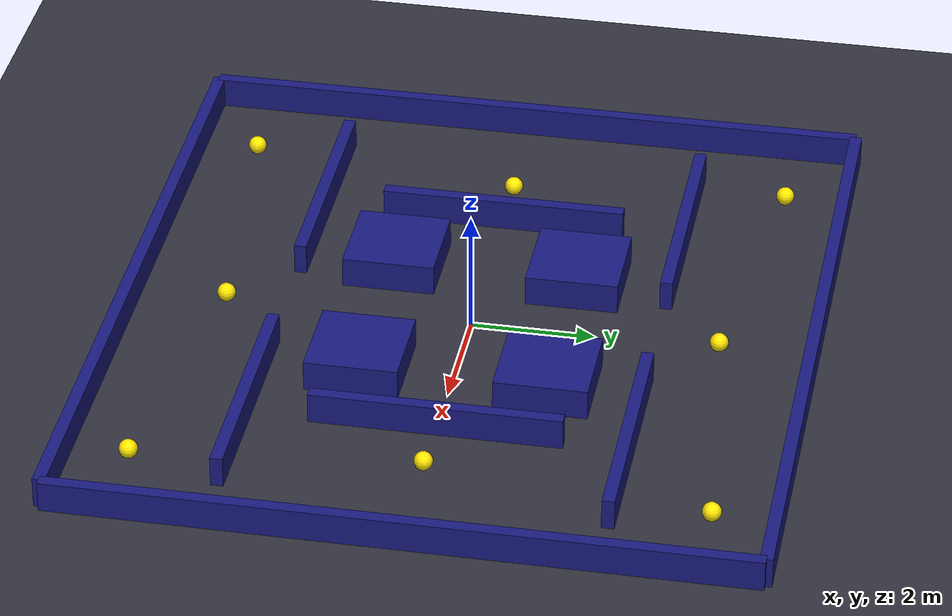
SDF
<?xml version="1.0" ?>
<sdf version="1.8">
  <world name="pac_mouse_maze">

    <!-- Physics -->
    <physics name="1ms" type="ode">
      <max_step_size>0.001</max_step_size>
      <real_time_factor>1.0</real_time_factor>
    </physics>

    <!-- Lighting -->
    <light type="directional" name="sun">
      <cast_shadows>true</cast_shadows>
      <pose>0 0 10 0 0 0</pose>
      <diffuse>0.8 0.8 0.8 1</diffuse>
      <specular>0.2 0.2 0.2 1</specular>
      <attenuation>
        <range>1000</range>
        <constant>0.9</constant>
        <linear>0.01</linear>
        <quadratic>0.001</quadratic>
      </attenuation>
      <direction>-0.5 0.1 -0.9</direction>
    </light>

    <!-- Ground Plane -->
    <model name="ground_plane">
      <static>true</static>
      <link name="link">
        <collision name="collision">
          <geometry>
            <plane>
              <normal>0 0 1</normal>
              <size>100 100</size>
            </plane>
          </geometry>
        </collision>
        <visual name="visual">
          <geometry>
            <plane>
              <normal>0 0 1</normal>
              <size>100 100</size>
            </plane>
          </geometry>
          <material>
            <ambient>0.2 0.2 0.25 1</ambient>
            <diffuse>0.2 0.2 0.25 1</diffuse>
          </material>
        </visual>
      </link>
    </model>

    <!-- MAZE WALLS (Pac-Man Style Layout) -->

    <!-- Outer boundary walls -->
    <!-- North wall -->
    <model name="wall_north">
      <static>true</static>
      <pose>0 5.5 0.25 0 0 0</pose>
      <link name="link">
        <collision name="collision">
          <geometry>
            <box><size>12 0.2 0.5</size></box>
          </geometry>
        </collision>
        <visual name="visual">
          <geometry>
            <box><size>12 0.2 0.5</size></box>
          </geometry>
          <material>
            <ambient>0.1 0.1 0.3 1</ambient>
            <diffuse>0.1 0.1 0.5 1</diffuse>
          </material>
        </visual>
      </link>
    </model>

    <!-- South wall -->
    <model name="wall_south">
      <static>true</static>
      <pose>0 -5.5 0.25 0 0 0</pose>
      <link name="link">
        <collision name="collision">
          <geometry>
            <box><size>12 0.2 0.5</size></box>
          </geometry>
        </collision>
        <visual name="visual">
          <geometry>
            <box><size>12 0.2 0.5</size></box>
          </geometry>
          <material>
            <ambient>0.1 0.1 0.3 1</ambient>
            <diffuse>0.1 0.1 0.5 1</diffuse>
          </material>
        </visual>
      </link>
    </model>

    <!-- East wall -->
    <model name="wall_east">
      <static>true</static>
      <pose>6 0 0.25 0 0 0</pose>
      <link name="link">
        <collision name="collision">
          <geometry>
            <box><size>0.2 11 0.5</size></box>
          </geometry>
        </collision>
        <visual name="visual">
          <geometry>
            <box><size>0.2 11 0.5</size></box>
          </geometry>
          <material>
            <ambient>0.1 0.1 0.3 1</ambient>
            <diffuse>0.1 0.1 0.5 1</diffuse>
          </material>
        </visual>
      </link>
    </model>

    <!-- West wall -->
    <model name="wall_west">
      <static>true</static>
      <pose>-6 0 0.25 0 0 0</pose>
      <link name="link">
        <collision name="collision">
          <geometry>
            <box><size>0.2 11 0.5</size></box>
          </geometry>
        </collision>
        <visual name="visual">
          <geometry>
            <box><size>0.2 11 0.5</size></box>
          </geometry>
          <material>
            <ambient>0.1 0.1 0.3 1</ambient>
            <diffuse>0.1 0.1 0.5 1</diffuse>
          </material>
        </visual>
      </link>
    </model>

    <!-- Internal walls - Creating corridors and rooms -->

    <!-- Horizontal corridor dividers -->
    <model name="wall_h1">
      <static>true</static>
      <pose>-3 3 0.25 0 0 0</pose>
      <link name="link">
        <collision name="collision">
          <geometry>
            <box><size>4 0.2 0.5</size></box>
          </geometry>
        </collision>
        <visual name="visual">
          <geometry>
            <box><size>4 0.2 0.5</size></box>
          </geometry>
          <material>
            <ambient>0.1 0.1 0.3 1</ambient>
            <diffuse>0.1 0.1 0.5 1</diffuse>
          </material>
        </visual>
      </link>
    </model>

    <model name="wall_h2">
      <static>true</static>
      <pose>3 3 0.25 0 0 0</pose>
      <link name="link">
        <collision name="collision">
          <geometry>
            <box><size>4 0.2 0.5</size></box>
          </geometry>
        </collision>
        <visual name="visual">
          <geometry>
            <box><size>4 0.2 0.5</size></box>
          </geometry>
          <material>
            <ambient>0.1 0.1 0.3 1</ambient>
            <diffuse>0.1 0.1 0.5 1</diffuse>
          </material>
        </visual>
      </link>
    </model>

    <model name="wall_h3">
      <static>true</static>
      <pose>-3 -3 0.25 0 0 0</pose>
      <link name="link">
        <collision name="collision">
          <geometry>
            <box><size>4 0.2 0.5</size></box>
          </geometry>
        </collision>
        <visual name="visual">
          <geometry>
            <box><size>4 0.2 0.5</size></box>
          </geometry>
          <material>
            <ambient>0.1 0.1 0.3 1</ambient>
            <diffuse>0.1 0.1 0.5 1</diffuse>
          </material>
        </visual>
      </link>
    </model>

    <model name="wall_h4">
      <static>true</static>
      <pose>3 -3 0.25 0 0 0</pose>
      <link name="link">
        <collision name="collision">
          <geometry>
            <box><size>4 0.2 0.5</size></box>
          </geometry>
        </collision>
        <visual name="visual">
          <geometry>
            <box><size>4 0.2 0.5</size></box>
          </geometry>
          <material>
            <ambient>0.1 0.1 0.3 1</ambient>
            <diffuse>0.1 0.1 0.5 1</diffuse>
          </material>
        </visual>
      </link>
    </model>

    <!-- Vertical corridor dividers -->
    <model name="wall_v1">
      <static>true</static>
      <pose>-3 0 0.25 0 0 0</pose>
      <link name="link">
        <collision name="collision">
          <geometry>
            <box><size>0.2 4 0.5</size></box>
          </geometry>
        </collision>
        <visual name="visual">
          <geometry>
            <box><size>0.2 4 0.5</size></box>
          </geometry>
          <material>
            <ambient>0.1 0.1 0.3 1</ambient>
            <diffuse>0.1 0.1 0.5 1</diffuse>
          </material>
        </visual>
      </link>
    </model>

    <model name="wall_v2">
      <static>true</static>
      <pose>3 0 0.25 0 0 0</pose>
      <link name="link">
        <collision name="collision">
          <geometry>
            <box><size>0.2 4 0.5</size></box>
          </geometry>
        </collision>
        <visual name="visual">
          <geometry>
            <box><size>0.2 4 0.5</size></box>
          </geometry>
          <material>
            <ambient>0.1 0.1 0.3 1</ambient>
            <diffuse>0.1 0.1 0.5 1</diffuse>
          </material>
        </visual>
      </link>
    </model>

    <!-- Center obstacle blocks -->
    <model name="center_block_1">
      <static>true</static>
      <pose>-1.5 1.5 0.25 0 0 0</pose>
      <link name="link">
        <collision name="collision">
          <geometry>
            <box><size>1.5 1.5 0.5</size></box>
          </geometry>
        </collision>
        <visual name="visual">
          <geometry>
            <box><size>1.5 1.5 0.5</size></box>
          </geometry>
          <material>
            <ambient>0.1 0.1 0.3 1</ambient>
            <diffuse>0.1 0.1 0.5 1</diffuse>
          </material>
        </visual>
      </link>
    </model>

    <model name="center_block_2">
      <static>true</static>
      <pose>1.5 1.5 0.25 0 0 0</pose>
      <link name="link">
        <collision name="collision">
          <geometry>
            <box><size>1.5 1.5 0.5</size></box>
          </geometry>
        </collision>
        <visual name="visual">
          <geometry>
            <box><size>1.5 1.5 0.5</size></box>
          </geometry>
          <material>
            <ambient>0.1 0.1 0.3 1</ambient>
            <diffuse>0.1 0.1 0.5 1</diffuse>
          </material>
        </visual>
      </link>
    </model>

    <model name="center_block_3">
      <static>true</static>
      <pose>-1.5 -1.5 0.25 0 0 0</pose>
      <link name="link">
        <collision name="collision">
          <geometry>
            <box><size>1.5 1.5 0.5</size></box>
          </geometry>
        </collision>
        <visual name="visual">
          <geometry>
            <box><size>1.5 1.5 0.5</size></box>
          </geometry>
          <material>
            <ambient>0.1 0.1 0.3 1</ambient>
            <diffuse>0.1 0.1 0.5 1</diffuse>
          </material>
        </visual>
      </link>
    </model>

    <model name="center_block_4">
      <static>true</static>
      <pose>1.5 -1.5 0.25 0 0 0</pose>
      <link name="link">
        <collision name="collision">
          <geometry>
            <box><size>1.5 1.5 0.5</size></box>
          </geometry>
        </collision>
        <visual name="visual">
          <geometry>
            <box><size>1.5 1.5 0.5</size></box>
          </geometry>
          <material>
            <ambient>0.1 0.1 0.3 1</ambient>
            <diffuse>0.1 0.1 0.5 1</diffuse>
          </material>
        </visual>
      </link>
    </model>

    <!-- CHEESE OBJECTS (8 pieces) -->

    <model name="cheese_1">
      <pose>-4.5 4.5 0.15 0 0 0</pose>
      <static>false</static>
      <link name="link">
        <collision name="collision">
          <geometry>
            <sphere><radius>0.15</radius></sphere>
          </geometry>
          <surface>
            <contact>
              <collide_without_contact>true</collide_without_contact>
            </contact>
          </surface>
        </collision>
        <visual name="visual">
          <geometry>
            <sphere><radius>0.15</radius></sphere>
          </geometry>
          <material>
            <ambient>1 0.9 0 1</ambient>
            <diffuse>1 0.9 0 1</diffuse>
            <emissive>0.3 0.3 0 1</emissive>
          </material>
        </visual>
        <inertial>
          <mass>0.1</mass>
          <inertia>
            <ixx>0.0001</ixx>
            <iyy>0.0001</iyy>
            <izz>0.0001</izz>
          </inertia>
        </inertial>
      </link>
    </model>

    <model name="cheese_2">
      <pose>4.5 4.5 0.15 0 0 0</pose>
      <static>false</static>
      <link name="link">
        <collision name="collision">
          <geometry>
            <sphere><radius>0.15</radius></sphere>
          </geometry>
          <surface>
            <contact>
              <collide_without_contact>true</collide_without_contact>
            </contact>
          </surface>
        </collision>
        <visual name="visual">
          <geometry>
            <sphere><radius>0.15</radius></sphere>
          </geometry>
          <material>
            <ambient>1 0.9 0 1</ambient>
            <diffuse>1 0.9 0 1</diffuse>
            <emissive>0.3 0.3 0 1</emissive>
          </material>
        </visual>
        <inertial>
          <mass>0.1</mass>
          <inertia>
            <ixx>0.0001</ixx>
            <iyy>0.0001</iyy>
            <izz>0.0001</izz>
          </inertia>
        </inertial>
      </link>
    </model>

    <model name="cheese_3">
      <pose>-4.5 -4.5 0.15 0 0 0</pose>
      <static>false</static>
      <link name="link">
        <collision name="collision">
          <geometry>
            <sphere><radius>0.15</radius></sphere>
          </geometry>
          <surface>
            <contact>
              <collide_without_contact>true</collide_without_contact>
            </contact>
          </surface>
        </collision>
        <visual name="visual">
          <geometry>
            <sphere><radius>0.15</radius></sphere>
          </geometry>
          <material>
            <ambient>1 0.9 0 1</ambient>
            <diffuse>1 0.9 0 1</diffuse>
            <emissive>0.3 0.3 0 1</emissive>
          </material>
        </visual>
        <inertial>
          <mass>0.1</mass>
          <inertia>
            <ixx>0.0001</ixx>
            <iyy>0.0001</iyy>
            <izz>0.0001</izz>
          </inertia>
        </inertial>
      </link>
    </model>

    <model name="cheese_4">
      <pose>4.5 -4.5 0.15 0 0 0</pose>
      <static>false</static>
      <link name="link">
        <collision name="collision">
          <geometry>
            <sphere><radius>0.15</radius></sphere>
          </geometry>
          <surface>
            <contact>
              <collide_without_contact>true</collide_without_contact>
            </contact>
          </surface>
        </collision>
        <visual name="visual">
          <geometry>
            <sphere><radius>0.15</radius></sphere>
          </geometry>
          <material>
            <ambient>1 0.9 0 1</ambient>
            <diffuse>1 0.9 0 1</diffuse>
            <emissive>0.3 0.3 0 1</emissive>
          </material>
        </visual>
        <inertial>
          <mass>0.1</mass>
          <inertia>
            <ixx>0.0001</ixx>
            <iyy>0.0001</iyy>
            <izz>0.0001</izz>
          </inertia>
        </inertial>
      </link>
    </model>

    <model name="cheese_5">
      <pose>0 4.0 0.15 0 0 0</pose>
      <static>false</static>
      <link name="link">
        <collision name="collision">
          <geometry>
            <sphere><radius>0.15</radius></sphere>
          </geometry>
          <surface>
            <contact>
              <collide_without_contact>true</collide_without_contact>
            </contact>
          </surface>
        </collision>
        <visual name="visual">
          <geometry>
            <sphere><radius>0.15</radius></sphere>
          </geometry>
          <material>
            <ambient>1 0.9 0 1</ambient>
            <diffuse>1 0.9 0 1</diffuse>
            <emissive>0.3 0.3 0 1</emissive>
          </material>
        </visual>
        <inertial>
          <mass>0.1</mass>
          <inertia>
            <ixx>0.0001</ixx>
            <iyy>0.0001</iyy>
            <izz>0.0001</izz>
          </inertia>
        </inertial>
      </link>
    </model>

    <model name="cheese_6">
      <pose>0 -4.0 0.15 0 0 0</pose>
      <static>false</static>
      <link name="link">
        <collision name="collision">
          <geometry>
            <sphere><radius>0.15</radius></sphere>
          </geometry>
          <surface>
            <contact>
              <collide_without_contact>true</collide_without_contact>
            </contact>
          </surface>
        </collision>
        <visual name="visual">
          <geometry>
            <sphere><radius>0.15</radius></sphere>
          </geometry>
          <material>
            <ambient>1 0.9 0 1</ambient>
            <diffuse>1 0.9 0 1</diffuse>
            <emissive>0.3 0.3 0 1</emissive>
          </material>
        </visual>
        <inertial>
          <mass>0.1</mass>
          <inertia>
            <ixx>0.0001</ixx>
            <iyy>0.0001</iyy>
            <izz>0.0001</izz>
          </inertia>
        </inertial>
      </link>
    </model>

    <model name="cheese_7">
      <pose>-4.0 0 0.15 0 0 0</pose>
      <static>false</static>
      <link name="link">
        <collision name="collision">
          <geometry>
            <sphere><radius>0.15</radius></sphere>
          </geometry>
          <surface>
            <contact>
              <collide_without_contact>true</collide_without_contact>
            </contact>
          </surface>
        </collision>
        <visual name="visual">
          <geometry>
            <sphere><radius>0.15</radius></sphere>
          </geometry>
          <material>
            <ambient>1 0.9 0 1</ambient>
            <diffuse>1 0.9 0 1</diffuse>
            <emissive>0.3 0.3 0 1</emissive>
          </material>
        </visual>
        <inertial>
          <mass>0.1</mass>
          <inertia>
            <ixx>0.0001</ixx>
            <iyy>0.0001</iyy>
            <izz>0.0001</izz>
          </inertia>
        </inertial>
      </link>
    </model>

    <model name="cheese_8">
      <pose>4.0 0 0.15 0 0 0</pose>
      <static>false</static>
      <link name="link">
        <collision name="collision">
          <geometry>
            <sphere><radius>0.15</radius></sphere>
          </geometry>
          <surface>
            <contact>
              <collide_without_contact>true</collide_without_contact>
            </contact>
          </surface>
        </collision>
        <visual name="visual">
          <geometry>
            <sphere><radius>0.15</radius></sphere>
          </geometry>
          <material>
            <ambient>1 0.9 0 1</ambient>
            <diffuse>1 0.9 0 1</diffuse>
            <emissive>0.3 0.3 0 1</emissive>
          </material>
        </visual>
        <inertial>
          <mass>0.1</mass>
          <inertia>
            <ixx>0.0001</ixx>
            <iyy>0.0001</iyy>
            <izz>0.0001</izz>
          </inertia>
        </inertial>
      </link>
    </model>

  </world>
</sdf>
